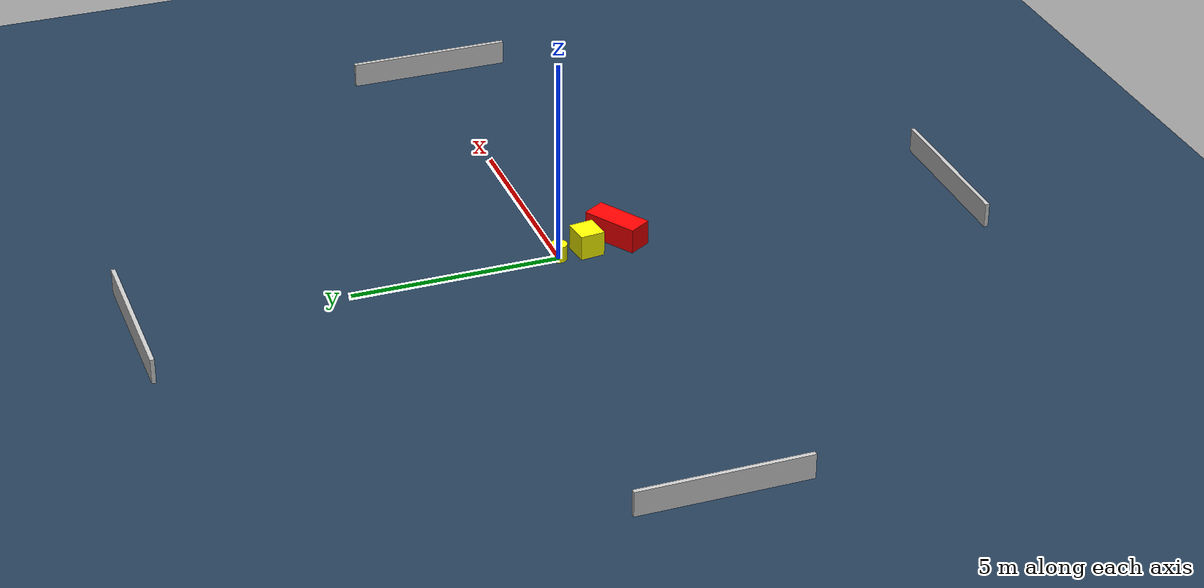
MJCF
<?xml version="1.0" ?>
<mujoco model="generated_environment">
  <option timestep="0.01" integrator="RK4" cone="elliptic"/>
  <default>
    <geom density="1"/>
  </default>
  <asset>
    <texture builtin="gradient" height="3072" name="skybox" rgb1="0.3 0.5 0.7" rgb2="0 0 0" type="skybox" width="512"/>
    <texture builtin="checker" height="300" name="groundplane" rgb1="0.2 0.3 0.4" rgb2="0.1 0.2 0.3" type="2d" width="300"/>
    <material name="groundplane" reflectance="0.2" texrepeat="5 5" texture="groundplane"/>
  </asset>
  <worldbody>
    <light dir="0 0 -1" directional="true" pos="0 0 1.5"/>
    <geom condim="3" friction="0.5 0.005 0.001" material="groundplane" name="floor" pos="0 0 0" size="0 0 0.05" type="plane"/>
    <body name="walls">
      <geom name="wall_1" condim="4" pos="-10.0 0.0 0.3" rgba="0.800000011920929 0.800000011920929 0.800000011920929 1.0" size="0.05 2.0 0.3" type="box"/>
      <geom name="wall_2" condim="4" pos="10.0 0.0 0.3" rgba="0.800000011920929 0.800000011920929 0.800000011920929 1.0" size="0.05 2.0 0.3" type="box"/>
      <geom name="wall_3" condim="4" pos="0.0 -10.0 0.3" rgba="0.800000011920929 0.800000011920929 0.800000011920929 1.0" size="2.0 0.05 0.3" type="box"/>
      <geom name="wall_4" condim="4" pos="0.0 10.0 0.3" rgba="0.800000011920929 0.800000011920929 0.800000011920929 1.0" size="2.0 0.05 0.3" type="box"/>
    </body>
    <body name="robot">
      <joint name="joint_x" type="slide" pos="0 0 0" axis="1 0 0"/>
      <joint name="joint_y" type="slide" pos="0 0 0" axis="0 1 0"/>
      <geom name="robot" type="cylinder" pos="0.0 0.0 0.2" size="0.2 0.2 0.0" mass="5.0" friction="1.0 0.005 0.0001" condim="4" rgba="1.0 1.0 0.0 1.0"/>
    </body>
    <body name="obstacle_1_movable">
      <geom name="obstacle_1_movable" condim="4" pos="0.11361381244682958 -0.7289239821226088 0.3" euler="0 0 6.214095688835197" friction="0.0 0.005 0.001" rgba="1.0 1.0 0.0 1.0" size="0.3189013626023719 0.29728656067705833 0.3" type="box" mass="0.1"/>
      <joint type="free"/>
    </body>
    <body name="obstacle_2_static">
      <geom name="obstacle_2_static" condim="4" pos="0.40808467067180726 -1.5829355969913383 0.3" euler="0 0 31.410280107711802" friction="0.0 0.005 0.001" rgba="1.0 0.0 0.0 1.0" size="0.6967063656472051 0.29876681360272256 0.3" type="box"/>
    </body>
  </worldbody>
  <actuator>
    <motor name="actuator_x" joint="joint_x" gear="1" ctrlrange="-1 1"/>
    <motor name="actuator_y" joint="joint_y" gear="1" ctrlrange="-1 1"/>
  </actuator>
</mujoco>
